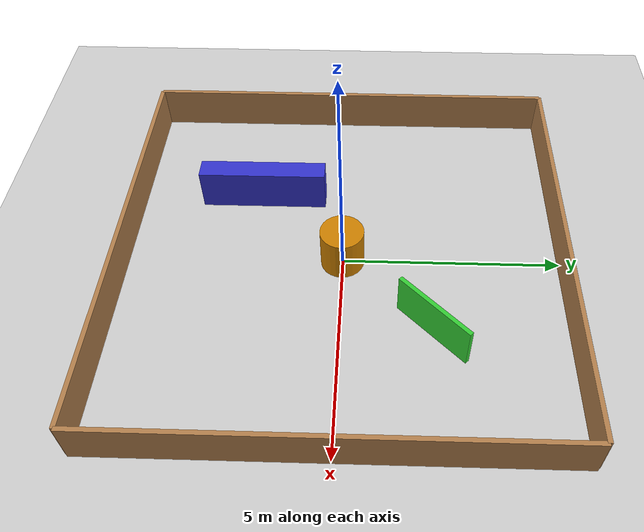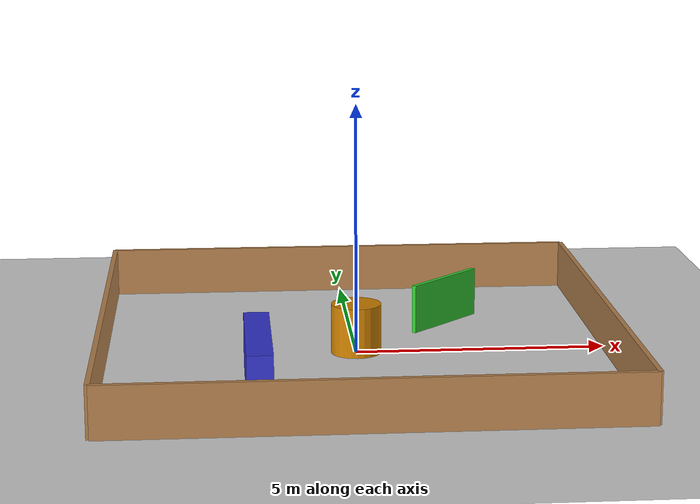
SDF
<sdf version="1.9">
 <world name="homerobot_world">
  <physics name="1ms" type="ignored">
   <max_step_size>0.001</max_step_size>
   <real_time_factor>1.0</real_time_factor>
  </physics>
  <plugin filename="gz-sim-physics-system" name="gz::sim::systems::Physics"/>
  <plugin filename="gz-sim-user-commands-system" name="gz::sim::systems::UserCommands"/>
  <plugin filename="gz-sim-scene-broadcaster-system" name="gz::sim::systems::SceneBroadcaster"/>
  <plugin filename="gz-sim-sensors-system" name="gz::sim::systems::Sensors">
   <render_engine>ogre2</render_engine>
  </plugin>
  <plugin filename="gz-sim-imu-system" name="gz::sim::systems::Imu"/>
  <light type="directional" name="sun">
   <pose>0 0 10 0 0 0</pose>
   <diffuse>0.8 0.8 0.8 1</diffuse>
   <specular>0.2 0.2 0.2 1</specular>
   <attenuation>
    <range>1000</range>
    <constant>0.9</constant>
    <linear>0.01</linear>
    <quadratic>0.001</quadratic>
   </attenuation>
   <direction>-0.5 0.1 -0.9</direction>
  </light>
  <model name="ground_plane">
   <static>true</static>
   <link name="link">
    <collision name="collision">
     <geometry><plane><normal>0 0 1</normal><size>100 100</size></plane></geometry>
    </collision>
    <visual name="visual">
     <geometry><plane><normal>0 0 1</normal><size>100 100</size></plane></geometry>
     <material>
      <ambient>0.8 0.8 0.8 1</ambient>
      <diffuse>0.8 0.8 0.8 1</diffuse>
      <specular>0.8 0.8 0.8 1</specular>
     </material>
    </visual>
   </link>
  </model>
  <model name="room">
   <static>true</static>
   <pose>0 0 0.5 0 0 0</pose>
   <link name="walls">
    <collision name="wall1">
     <pose>5 0 0 0 0 1.57</pose>
     <geometry><box><size>10 0.1 1</size></box></geometry>
    </collision>
    <visual name="wall1_visual">
     <pose>5 0 0 0 0 1.57</pose>
     <geometry><box><size>10 0.1 1</size></box></geometry>
     <material><ambient>0.7 0.5 0.3 1</ambient></material>
    </visual>
    <collision name="wall2">
     <pose>-5 0 0 0 0 1.57</pose>
     <geometry><box><size>10 0.1 1</size></box></geometry>
    </collision>
    <visual name="wall2_visual">
     <pose>-5 0 0 0 0 1.57</pose>
     <geometry><box><size>10 0.1 1</size></box></geometry>
     <material><ambient>0.7 0.5 0.3 1</ambient></material>
    </visual>
    <collision name="wall3">
     <pose>0 5 0 0 0 0</pose>
     <geometry><box><size>10 0.1 1</size></box></geometry>
    </collision>
    <visual name="wall3_visual">
     <pose>0 5 0 0 0 0</pose>
     <geometry><box><size>10 0.1 1</size></box></geometry>
     <material><ambient>0.7 0.5 0.3 1</ambient></material>
    </visual>
    <collision name="wall4">
     <pose>0 -5 0 0 0 0</pose>
     <geometry><box><size>10 0.1 1</size></box></geometry>
    </collision>
    <visual name="wall4_visual">
     <pose>0 -5 0 0 0 0</pose>
     <geometry><box><size>10 0.1 1</size></box></geometry>
     <material><ambient>0.7 0.5 0.3 1</ambient></material>
    </visual>
    <collision name="obs1">
     <pose>2 2 0 0 0 0.785</pose>
     <geometry><box><size>2 0.1 1</size></box></geometry>
    </collision>
    <visual name="obs1_visual">
     <pose>2 2 0 0 0 0.785</pose>
     <geometry><box><size>2 0.1 1</size></box></geometry>
     <material><ambient>0.2 0.8 0.2 1</ambient><diffuse>0.2 0.8 0.2 1</diffuse></material>
    </visual>
    <collision name="obs2">
     <pose>-2 -2 0 0 0 0</pose>
     <geometry><box><size>0.5 3 1</size></box></geometry>
    </collision>
    <visual name="obs2_visual">
     <pose>-2 -2 0 0 0 0</pose>
     <geometry><box><size>0.5 3 1</size></box></geometry>
     <material><ambient>0.2 0.2 0.8 1</ambient><diffuse>0.2 0.2 0.8 1</diffuse></material>
    </visual>
    <collision name="obs3">
     <geometry><cylinder><radius>0.5</radius><length>1</length></cylinder></geometry>
    </collision>
    <visual name="obs3_visual">
     <geometry><cylinder><radius>0.5</radius><length>1</length></cylinder></geometry>
     <material><ambient>0.8 0.5 0.0 1</ambient><diffuse>0.8 0.5 0.0 1</diffuse></material>
    </visual>
   </link>
  </model>
 </world>
</sdf>
